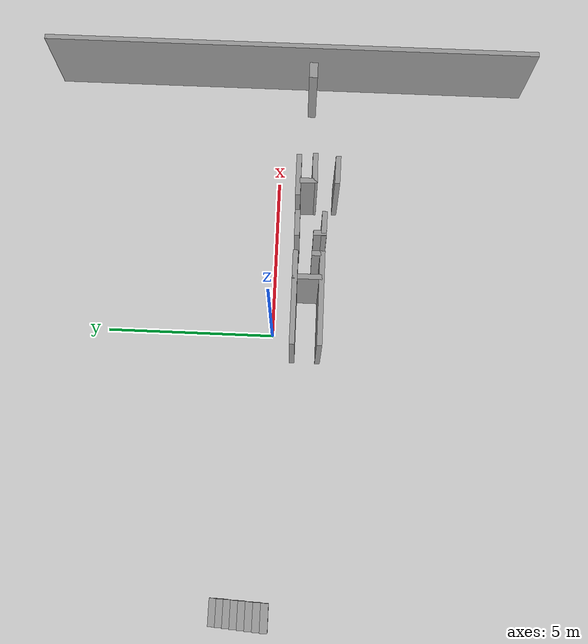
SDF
<sdf version="1.7">
 <world name="default">
  <model name="ground_plane">
   <static>1</static>
   <link name="link">
    <collision name="collision">
     <geometry><plane><normal>0 0 1</normal><size>100 100</size></plane></geometry>
     <surface><friction><ode><mu>100</mu><mu2>50</mu2></ode></friction></surface>
    </collision>
    <visual name="visual">
     <cast_shadows>0</cast_shadows>
     <geometry><plane><normal>0 0 1</normal><size>100 100</size></plane></geometry>
     <material>
      <script><uri>file://media/materials/scripts/gazebo.material</uri><name>Gazebo/Grey</name></script>
     </material>
    </visual>
   </link>
  </model>
  <model name="Level1">
   <link name="Stairs_3">
    <visual name="Stairs_3_Visual_0">
     <pose>-8.05835 1.30916 0.09375 0 -0 0</pose>
     <geometry><box><size>0.765 0.21375 0.1875</size></box></geometry>
     <material>
      <script><uri>file://media/materials/scripts/gazebo.material</uri><name>Gazebo/Grey</name></script>
      <ambient>1 1 1 1</ambient>
      <shader type="pixel"/>
     </material>
     <meta><layer>0</layer></meta>
    </visual>
    <visual name="Stairs_3_Visual_1">
     <pose>-8.05835 1.09541 0.28125 0 -0 0</pose>
     <geometry><box><size>0.765 0.21375 0.1875</size></box></geometry>
     <material>
      <script><uri>file://media/materials/scripts/gazebo.material</uri><name>Gazebo/Grey</name></script>
      <ambient>1 1 1 1</ambient>
      <shader type="pixel"/>
     </material>
     <meta><layer>0</layer></meta>
    </visual>
    <visual name="Stairs_3_Visual_2">
     <pose>-8.05835 0.881662 0.46875 0 -0 0</pose>
     <geometry><box><size>0.765 0.21375 0.1875</size></box></geometry>
     <material>
      <script><uri>file://media/materials/scripts/gazebo.material</uri><name>Gazebo/Grey</name></script>
      <ambient>1 1 1 1</ambient>
      <shader type="pixel"/>
     </material>
     <meta><layer>0</layer></meta>
    </visual>
    <visual name="Stairs_3_Visual_3">
     <pose>-8.05835 0.667912 0.65625 0 -0 0</pose>
     <geometry><box><size>0.765 0.21375 0.1875</size></box></geometry>
     <material>
      <script><uri>file://media/materials/scripts/gazebo.material</uri><name>Gazebo/Grey</name></script>
      <ambient>1 1 1 1</ambient>
      <shader type="pixel"/>
     </material>
     <meta><layer>0</layer></meta>
    </visual>
    <visual name="Stairs_3_Visual_4">
     <pose>-8.05835 0.454162 0.84375 0 -0 0</pose>
     <geometry><box><size>0.765 0.21375 0.1875</size></box></geometry>
     <material>
      <script><uri>file://media/materials/scripts/gazebo.material</uri><name>Gazebo/Grey</name></script>
      <ambient>1 1 1 1</ambient>
      <shader type="pixel"/>
     </material>
     <meta><layer>0</layer></meta>
    </visual>
    <visual name="Stairs_3_Visual_5">
     <pose>-8.05835 0.240412 1.03125 0 -0 0</pose>
     <geometry><box><size>0.765 0.21375 0.1875</size></box></geometry>
     <material>
      <script><uri>file://media/materials/scripts/gazebo.material</uri><name>Gazebo/Grey</name></script>
      <ambient>1 1 1 1</ambient>
      <shader type="pixel"/>
     </material>
     <meta><layer>0</layer></meta>
    </visual>
    <visual name="Stairs_3_Visual_6">
     <pose>-8.05835 0.026662 1.21875 0 -0 0</pose>
     <geometry><box><size>0.765 0.21375 0.1875</size></box></geometry>
     <material>
      <script><uri>file://media/materials/scripts/gazebo.material</uri><name>Gazebo/Grey</name></script>
      <ambient>1 1 1 1</ambient>
      <shader type="pixel"/>
     </material>
     <meta><layer>0</layer></meta>
    </visual>
    <visual name="Stairs_3_Visual_7">
     <pose>-8.05835 -0.187088 1.40625 0 -0 0</pose>
     <geometry><box><size>0.765 0.21375 0.1875</size></box></geometry>
     <material>
      <script><uri>file://media/materials/scripts/gazebo.material</uri><name>Gazebo/Grey</name></script>
      <ambient>1 1 1 1</ambient>
      <shader type="pixel"/>
     </material>
     <meta><layer>0</layer></meta>
    </visual>
    <collision name="Stairs_3_Collision_0">
     <pose>-8.05835 1.30916 0.09375 0 -0 0</pose>
     <geometry><box><size>0.765 0.21375 0.1875</size></box></geometry>
     <surface>
      <friction>
       <ode><mu>1</mu><mu2>1</mu2><fdir1>0 0 0</fdir1><slip1>0</slip1><slip2>0</slip2></ode>
       <torsional>
        <coefficient>1</coefficient>
        <patch_radius>0</patch_radius>
        <surface_radius>0</surface_radius>
        <use_patch_radius>1</use_patch_radius>
        <ode><slip>0</slip></ode>
       </torsional>
      </friction>
      <bounce><restitution_coefficient>0</restitution_coefficient><threshold>1e+06</threshold></bounce>
      <contact>
       <collide_without_contact>0</collide_without_contact>
       <collide_without_contact_bitmask>1</collide_without_contact_bitmask>
       <collide_bitmask>1</collide_bitmask>
       <ode>
        <soft_cfm>0</soft_cfm>
        <soft_erp>0.2</soft_erp>
        <kp>1e+13</kp>
        <kd>1</kd>
        <max_vel>0.01</max_vel>
        <min_depth>0</min_depth>
       </ode>
       <bullet>
        <split_impulse>1</split_impulse>
        <split_impulse_penetration_threshold>-0.01</split_impulse_penetration_threshold>
        <soft_cfm>0</soft_cfm>
        <soft_erp>0.2</soft_erp>
        <kp>1e+13</kp>
        <kd>1</kd>
       </bullet>
      </contact>
     </surface>
    </collision>
    <collision name="Stairs_3_Collision_1">
     <pose>-8.05835 1.09541 0.28125 0 -0 0</pose>
     <geometry><box><size>0.765 0.21375 0.1875</size></box></geometry>
     <surface>
      <friction>
       <ode><mu>1</mu><mu2>1</mu2><fdir1>0 0 0</fdir1><slip1>0</slip1><slip2>0</slip2></ode>
       <torsional>
        <coefficient>1</coefficient>
        <patch_radius>0</patch_radius>
        <surface_radius>0</surface_radius>
        <use_patch_radius>1</use_patch_radius>
        <ode><slip>0</slip></ode>
       </torsional>
      </friction>
      <bounce><restitution_coefficient>0</restitution_coefficient><threshold>1e+06</threshold></bounce>
      <contact>
       <collide_without_contact>0</collide_without_contact>
       <collide_without_contact_bitmask>1</collide_without_contact_bitmask>
       <collide_bitmask>1</collide_bitmask>
       <ode>
        <soft_cfm>0</soft_cfm>
        <soft_erp>0.2</soft_erp>
        <kp>1e+13</kp>
        <kd>1</kd>
        <max_vel>0.01</max_vel>
        <min_depth>0</min_depth>
       </ode>
       <bullet>
        <split_impulse>1</split_impulse>
        <split_impulse_penetration_threshold>-0.01</split_impulse_penetration_threshold>
        <soft_cfm>0</soft_cfm>
        <soft_erp>0.2</soft_erp>
        <kp>1e+13</kp>
        <kd>1</kd>
       </bullet>
      </contact>
     </surface>
    </collision>
    <collision name="Stairs_3_Collision_2">
     <pose>-8.05835 0.881662 0.46875 0 -0 0</pose>
     <geometry><box><size>0.765 0.21375 0.1875</size></box></geometry>
     <surface>
      <friction>
       <ode><mu>1</mu><mu2>1</mu2><fdir1>0 0 0</fdir1><slip1>0</slip1><slip2>0</slip2></ode>
       <torsional>
        <coefficient>1</coefficient>
        <patch_radius>0</patch_radius>
        <surface_radius>0</surface_radius>
        <use_patch_radius>1</use_patch_radius>
        <ode><slip>0</slip></ode>
       </torsional>
      </friction>
      <bounce><restitution_coefficient>0</restitution_coefficient><threshold>1e+06</threshold></bounce>
      <contact>
       <collide_without_contact>0</collide_without_contact>
       <collide_without_contact_bitmask>1</collide_without_contact_bitmask>
       <collide_bitmask>1</collide_bitmask>
       <ode>
        <soft_cfm>0</soft_cfm>
        <soft_erp>0.2</soft_erp>
        <kp>1e+13</kp>
        <kd>1</kd>
        <max_vel>0.01</max_vel>
        <min_depth>0</min_depth>
       </ode>
       <bullet>
        <split_impulse>1</split_impulse>
        <split_impulse_penetration_threshold>-0.01</split_impulse_penetration_threshold>
        <soft_cfm>0</soft_cfm>
        <soft_erp>0.2</soft_erp>
        <kp>1e+13</kp>
        <kd>1</kd>
       </bullet>
      </contact>
     </surface>
    </collision>
    <collision name="Stairs_3_Collision_3">
     <pose>-8.05835 0.667912 0.65625 0 -0 0</pose>
     <geometry><box><size>0.765 0.21375 0.1875</size></box></geometry>
     <surface>
      <friction>
       <ode><mu>1</mu><mu2>1</mu2><fdir1>0 0 0</fdir1><slip1>0</slip1><slip2>0</slip2></ode>
       <torsional>
        <coefficient>1</coefficient>
        <patch_radius>0</patch_radius>
        <surface_radius>0</surface_radius>
        <use_patch_radius>1</use_patch_radius>
        <ode><slip>0</slip></ode>
       </torsional>
      </friction>
      <bounce><restitution_coefficient>0</restitution_coefficient><threshold>1e+06</threshold></bounce>
      <contact>
       <collide_without_contact>0</collide_without_contact>
       <collide_without_contact_bitmask>1</collide_without_contact_bitmask>
       <collide_bitmask>1</collide_bitmask>
       <ode>
        <soft_cfm>0</soft_cfm>
        <soft_erp>0.2</soft_erp>
        <kp>1e+13</kp>
        <kd>1</kd>
        <max_vel>0.01</max_vel>
        <min_depth>0</min_depth>
       </ode>
       <bullet>
        <split_impulse>1</split_impulse>
        <split_impulse_penetration_threshold>-0.01</split_impulse_penetration_threshold>
        <soft_cfm>0</soft_cfm>
        <soft_erp>0.2</soft_erp>
        <kp>1e+13</kp>
        <kd>1</kd>
       </bullet>
      </contact>
     </surface>
    </collision>
    <collision name="Stairs_3_Collision_4">
     <pose>-8.05835 0.454162 0.84375 0 -0 0</pose>
     <geometry><box><size>0.765 0.21375 0.1875</size></box></geometry>
     <surface>
      <friction>
       <ode><mu>1</mu><mu2>1</mu2><fdir1>0 0 0</fdir1><slip1>0</slip1><slip2>0</slip2></ode>
       <torsional>
        <coefficient>1</coefficient>
        <patch_radius>0</patch_radius>
        <surface_radius>0</surface_radius>
        <use_patch_radius>1</use_patch_radius>
        <ode><slip>0</slip></ode>
       </torsional>
      </friction>
      <bounce><restitution_coefficient>0</restitution_coefficient><threshold>1e+06</threshold></bounce>
      <contact>
       <collide_without_contact>0</collide_without_contact>
       <collide_without_contact_bitmask>1</collide_without_contact_bitmask>
       <collide_bitmask>1</collide_bitmask>
       <ode>
        <soft_cfm>0</soft_cfm>
        <soft_erp>0.2</soft_erp>
        <kp>1e+13</kp>
        <kd>1</kd>
        <max_vel>0.01</max_vel>
        <min_depth>0</min_depth>
       </ode>
       <bullet>
        <split_impulse>1</split_impulse>
        <split_impulse_penetration_threshold>-0.01</split_impulse_penetration_threshold>
        <soft_cfm>0</soft_cfm>
        <soft_erp>0.2</soft_erp>
        <kp>1e+13</kp>
        <kd>1</kd>
       </bullet>
      </contact>
     </surface>
    </collision>
    <collision name="Stairs_3_Collision_5">
     <pose>-8.05835 0.240412 1.03125 0 -0 0</pose>
     <geometry><box><size>0.765 0.21375 0.1875</size></box></geometry>
     <surface>
      <friction>
       <ode><mu>1</mu><mu2>1</mu2><fdir1>0 0 0</fdir1><slip1>0</slip1><slip2>0</slip2></ode>
       <torsional>
        <coefficient>1</coefficient>
        <patch_radius>0</patch_radius>
        <surface_radius>0</surface_radius>
        <use_patch_radius>1</use_patch_radius>
        <ode><slip>0</slip></ode>
       </torsional>
      </friction>
      <bounce><restitution_coefficient>0</restitution_coefficient><threshold>1e+06</threshold></bounce>
      <contact>
       <collide_without_contact>0</collide_without_contact>
       <collide_without_contact_bitmask>1</collide_without_contact_bitmask>
       <collide_bitmask>1</collide_bitmask>
       <ode>
        <soft_cfm>0</soft_cfm>
        <soft_erp>0.2</soft_erp>
        <kp>1e+13</kp>
        <kd>1</kd>
        <max_vel>0.01</max_vel>
        <min_depth>0</min_depth>
       </ode>
       <bullet>
        <split_impulse>1</split_impulse>
        <split_impulse_penetration_threshold>-0.01</split_impulse_penetration_threshold>
        <soft_cfm>0</soft_cfm>
        <soft_erp>0.2</soft_erp>
        <kp>1e+13</kp>
        <kd>1</kd>
       </bullet>
      </contact>
     </surface>
    </collision>
    <collision name="Stairs_3_Collision_6">
     <pose>-8.05835 0.026662 1.21875 0 -0 0</pose>
     <geometry><box><size>0.765 0.21375 0.1875</size></box></geometry>
     <surface>
      <friction>
       <ode><mu>1</mu><mu2>1</mu2><fdir1>0 0 0</fdir1><slip1>0</slip1><slip2>0</slip2></ode>
       <torsional>
        <coefficient>1</coefficient>
        <patch_radius>0</patch_radius>
        <surface_radius>0</surface_radius>
        <use_patch_radius>1</use_patch_radius>
        <ode><slip>0</slip></ode>
       </torsional>
      </friction>
      <bounce><restitution_coefficient>0</restitution_coefficient><threshold>1e+06</threshold></bounce>
      <contact>
       <collide_without_contact>0</collide_without_contact>
       <collide_without_contact_bitmask>1</collide_without_contact_bitmask>
       <collide_bitmask>1</collide_bitmask>
       <ode>
        <soft_cfm>0</soft_cfm>
        <soft_erp>0.2</soft_erp>
        <kp>1e+13</kp>
        <kd>1</kd>
        <max_vel>0.01</max_vel>
        <min_depth>0</min_depth>
       </ode>
       <bullet>
        <split_impulse>1</split_impulse>
        <split_impulse_penetration_threshold>-0.01</split_impulse_penetration_threshold>
        <soft_cfm>0</soft_cfm>
        <soft_erp>0.2</soft_erp>
        <kp>1e+13</kp>
        <kd>1</kd>
       </bullet>
      </contact>
     </surface>
    </collision>
    <collision name="Stairs_3_Collision_7">
     <pose>-8.05835 -0.187088 1.40625 0 -0 0</pose>
     <geometry><box><size>0.765 0.21375 0.1875</size></box></geometry>
     <surface>
      <friction>
       <ode><mu>1</mu><mu2>1</mu2><fdir1>0 0 0</fdir1><slip1>0</slip1><slip2>0</slip2></ode>
       <torsional>
        <coefficient>1</coefficient>
        <patch_radius>0</patch_radius>
        <surface_radius>0</surface_radius>
        <use_patch_radius>1</use_patch_radius>
        <ode><slip>0</slip></ode>
       </torsional>
      </friction>
      <bounce><restitution_coefficient>0</restitution_coefficient><threshold>1e+06</threshold></bounce>
      <contact>
       <collide_without_contact>0</collide_without_contact>
       <collide_without_contact_bitmask>1</collide_without_contact_bitmask>
       <collide_bitmask>1</collide_bitmask>
       <ode>
        <soft_cfm>0</soft_cfm>
        <soft_erp>0.2</soft_erp>
        <kp>1e+13</kp>
        <kd>1</kd>
        <max_vel>0.01</max_vel>
        <min_depth>0</min_depth>
       </ode>
       <bullet>
        <split_impulse>1</split_impulse>
        <split_impulse_penetration_threshold>-0.01</split_impulse_penetration_threshold>
        <soft_cfm>0</soft_cfm>
        <soft_erp>0.2</soft_erp>
        <kp>1e+13</kp>
        <kd>1</kd>
       </bullet>
      </contact>
     </surface>
    </collision>
   </link>
   <link name="Wall_100">
    <pose>1.87692 -1.27369 0 0 -0 1.55725</pose>
    <visual name="Wall_100_Visual">
     <pose>0 0 1.25 0 -0 0</pose>
     <geometry><box><size>0.380938 0.15 2.5</size></box></geometry>
     <material>
      <script><uri>file://media/materials/scripts/gazebo.material</uri><name>Gazebo/Grey</name></script>
      <ambient>1 1 1 1</ambient>
      <shader type="pixel"/>
     </material>
     <meta><layer>0</layer></meta>
    </visual>
    <collision name="Wall_100_Collision">
     <pose>0 0 1.25 0 -0 0</pose>
     <geometry><box><size>0.380938 0.15 2.5</size></box></geometry>
     <surface>
      <friction>
       <ode><mu>1</mu><mu2>1</mu2><fdir1>0 0 0</fdir1><slip1>0</slip1><slip2>0</slip2></ode>
       <torsional>
        <coefficient>1</coefficient>
        <patch_radius>0</patch_radius>
        <surface_radius>0</surface_radius>
        <use_patch_radius>1</use_patch_radius>
        <ode><slip>0</slip></ode>
       </torsional>
      </friction>
      <bounce><restitution_coefficient>0</restitution_coefficient><threshold>1e+06</threshold></bounce>
      <contact>
       <collide_without_contact>0</collide_without_contact>
       <collide_without_contact_bitmask>1</collide_without_contact_bitmask>
       <collide_bitmask>1</collide_bitmask>
       <ode>
        <soft_cfm>0</soft_cfm>
        <soft_erp>0.2</soft_erp>
        <kp>1e+13</kp>
        <kd>1</kd>
        <max_vel>0.01</max_vel>
        <min_depth>0</min_depth>
       </ode>
       <bullet>
        <split_impulse>1</split_impulse>
        <split_impulse_penetration_threshold>-0.01</split_impulse_penetration_threshold>
        <soft_cfm>0</soft_cfm>
        <soft_erp>0.2</soft_erp>
        <kp>1e+13</kp>
        <kd>1</kd>
       </bullet>
      </contact>
     </surface>
    </collision>
   </link>
   <link name="Wall_118">
    <pose>2.78063 -1.41333 0 0 0 -0.016565</pose>
    <visual name="Wall_118_Visual">
     <pose>0 0 1.25 0 -0 0</pose>
     <geometry><box><size>0.743336 0.15 2.5</size></box></geometry>
     <material>
      <script><uri>file://media/materials/scripts/gazebo.material</uri><name>Gazebo/Grey</name></script>
      <ambient>1 1 1 1</ambient>
      <shader type="pixel"/>
     </material>
     <meta><layer>0</layer></meta>
    </visual>
    <collision name="Wall_118_Collision">
     <pose>0 0 1.25 0 -0 0</pose>
     <geometry><box><size>0.743336 0.15 2.5</size></box></geometry>
     <surface>
      <friction>
       <ode><mu>1</mu><mu2>1</mu2><fdir1>0 0 0</fdir1><slip1>0</slip1><slip2>0</slip2></ode>
       <torsional>
        <coefficient>1</coefficient>
        <patch_radius>0</patch_radius>
        <surface_radius>0</surface_radius>
        <use_patch_radius>1</use_patch_radius>
        <ode><slip>0</slip></ode>
       </torsional>
      </friction>
      <bounce><restitution_coefficient>0</restitution_coefficient><threshold>1e+06</threshold></bounce>
      <contact>
       <collide_without_contact>0</collide_without_contact>
       <collide_without_contact_bitmask>1</collide_without_contact_bitmask>
       <collide_bitmask>1</collide_bitmask>
       <ode>
        <soft_cfm>0</soft_cfm>
        <soft_erp>0.2</soft_erp>
        <kp>1e+13</kp>
        <kd>1</kd>
        <max_vel>0.01</max_vel>
        <min_depth>0</min_depth>
       </ode>
       <bullet>
        <split_impulse>1</split_impulse>
        <split_impulse_penetration_threshold>-0.01</split_impulse_penetration_threshold>
        <soft_cfm>0</soft_cfm>
        <soft_erp>0.2</soft_erp>
        <kp>1e+13</kp>
        <kd>1</kd>
       </bullet>
      </contact>
     </surface>
    </collision>
   </link>
   <link name="Wall_120">
    <pose>2.7801 -0.636031 0 0 -0 0.007026</pose>
    <visual name="Wall_120_Visual">
     <pose>0 0 1.25 0 -0 0</pose>
     <geometry><box><size>0.784003 0.15 2.5</size></box></geometry>
     <material>
      <script><uri>file://media/materials/scripts/gazebo.material</uri><name>Gazebo/Grey</name></script>
      <ambient>1 1 1 1</ambient>
      <shader type="pixel"/>
     </material>
     <meta><layer>0</layer></meta>
    </visual>
    <collision name="Wall_120_Collision">
     <pose>0 0 1.25 0 -0 0</pose>
     <geometry><box><size>0.784003 0.15 2.5</size></box></geometry>
     <surface>
      <friction>
       <ode><mu>1</mu><mu2>1</mu2><fdir1>0 0 0</fdir1><slip1>0</slip1><slip2>0</slip2></ode>
       <torsional>
        <coefficient>1</coefficient>
        <patch_radius>0</patch_radius>
        <surface_radius>0</surface_radius>
        <use_patch_radius>1</use_patch_radius>
        <ode><slip>0</slip></ode>
       </torsional>
      </friction>
      <bounce><restitution_coefficient>0</restitution_coefficient><threshold>1e+06</threshold></bounce>
      <contact>
       <collide_without_contact>0</collide_without_contact>
       <collide_without_contact_bitmask>1</collide_without_contact_bitmask>
       <collide_bitmask>1</collide_bitmask>
       <ode>
        <soft_cfm>0</soft_cfm>
        <soft_erp>0.2</soft_erp>
        <kp>1e+13</kp>
        <kd>1</kd>
        <max_vel>0.01</max_vel>
        <min_depth>0</min_depth>
       </ode>
       <bullet>
        <split_impulse>1</split_impulse>
        <split_impulse_penetration_threshold>-0.01</split_impulse_penetration_threshold>
        <soft_cfm>0</soft_cfm>
        <soft_erp>0.2</soft_erp>
        <kp>1e+13</kp>
        <kd>1</kd>
       </bullet>
      </contact>
     </surface>
    </collision>
   </link>
   <link name="Wall_125">
    <pose>2.49241 -1.2982 0 0 0 -1.5603</pose>
    <visual name="Wall_125_Visual">
     <pose>0 0 1.25 0 -0 0</pose>
     <geometry><box><size>0.379383 0.15 2.5</size></box></geometry>
     <material>
      <script><uri>file://media/materials/scripts/gazebo.material</uri><name>Gazebo/Grey</name></script>
      <ambient>1 1 1 1</ambient>
      <shader type="pixel"/>
     </material>
     <meta><layer>0</layer></meta>
    </visual>
    <collision name="Wall_125_Collision">
     <pose>0 0 1.25 0 -0 0</pose>
     <geometry><box><size>0.379383 0.15 2.5</size></box></geometry>
     <surface>
      <friction>
       <ode><mu>1</mu><mu2>1</mu2><fdir1>0 0 0</fdir1><slip1>0</slip1><slip2>0</slip2></ode>
       <torsional>
        <coefficient>1</coefficient>
        <patch_radius>0</patch_radius>
        <surface_radius>0</surface_radius>
        <use_patch_radius>1</use_patch_radius>
        <ode><slip>0</slip></ode>
       </torsional>
      </friction>
      <bounce><restitution_coefficient>0</restitution_coefficient><threshold>1e+06</threshold></bounce>
      <contact>
       <collide_without_contact>0</collide_without_contact>
       <collide_without_contact_bitmask>1</collide_without_contact_bitmask>
       <collide_bitmask>1</collide_bitmask>
       <ode>
        <soft_cfm>0</soft_cfm>
        <soft_erp>0.2</soft_erp>
        <kp>1e+13</kp>
        <kd>1</kd>
        <max_vel>0.01</max_vel>
        <min_depth>0</min_depth>
       </ode>
       <bullet>
        <split_impulse>1</split_impulse>
        <split_impulse_penetration_threshold>-0.01</split_impulse_penetration_threshold>
        <soft_cfm>0</soft_cfm>
        <soft_erp>0.2</soft_erp>
        <kp>1e+13</kp>
        <kd>1</kd>
       </bullet>
      </contact>
     </surface>
    </collision>
   </link>
   <link name="Wall_127">
    <pose>4.2698 -0.614016 0 0 -0 0.001406</pose>
    <visual name="Wall_127_Visual">
     <pose>0 0 1.25 0 -0 0</pose>
     <geometry><box><size>1.27277 0.15 2.5</size></box></geometry>
     <material>
      <script><uri>file://media/materials/scripts/gazebo.material</uri><name>Gazebo/Grey</name></script>
      <ambient>1 1 1 1</ambient>
      <shader type="pixel"/>
     </material>
     <meta><layer>0</layer></meta>
    </visual>
    <collision name="Wall_127_Collision">
     <pose>0 0 1.25 0 -0 0</pose>
     <geometry><box><size>1.27277 0.15 2.5</size></box></geometry>
     <surface>
      <friction>
       <ode><mu>1</mu><mu2>1</mu2><fdir1>0 0 0</fdir1><slip1>0</slip1><slip2>0</slip2></ode>
       <torsional>
        <coefficient>1</coefficient>
        <patch_radius>0</patch_radius>
        <surface_radius>0</surface_radius>
        <use_patch_radius>1</use_patch_radius>
        <ode><slip>0</slip></ode>
       </torsional>
      </friction>
      <bounce><restitution_coefficient>0</restitution_coefficient><threshold>1e+06</threshold></bounce>
      <contact>
       <collide_without_contact>0</collide_without_contact>
       <collide_without_contact_bitmask>1</collide_without_contact_bitmask>
       <collide_bitmask>1</collide_bitmask>
       <ode>
        <soft_cfm>0</soft_cfm>
        <soft_erp>0.2</soft_erp>
        <kp>1e+13</kp>
        <kd>1</kd>
        <max_vel>0.01</max_vel>
        <min_depth>0</min_depth>
       </ode>
       <bullet>
        <split_impulse>1</split_impulse>
        <split_impulse_penetration_threshold>-0.01</split_impulse_penetration_threshold>
        <soft_cfm>0</soft_cfm>
        <soft_erp>0.2</soft_erp>
        <kp>1e+13</kp>
        <kd>1</kd>
       </bullet>
      </contact>
     </surface>
    </collision>
   </link>
   <link name="Wall_129">
    <pose>4.09078 -0.915784 0 0 0 -1.53956</pose>
    <visual name="Wall_129_Visual">
     <pose>0 0 1.25 0 -0 0</pose>
     <geometry><box><size>0.511978 0.15 2.5</size></box></geometry>
     <material>
      <script><uri>file://media/materials/scripts/gazebo.material</uri><name>Gazebo/Grey</name></script>
      <ambient>1 1 1 1</ambient>
      <shader type="pixel"/>
     </material>
     <meta><layer>0</layer></meta>
    </visual>
    <collision name="Wall_129_Collision">
     <pose>0 0 1.25 0 -0 0</pose>
     <geometry><box><size>0.511978 0.15 2.5</size></box></geometry>
     <surface>
      <friction>
       <ode><mu>1</mu><mu2>1</mu2><fdir1>0 0 0</fdir1><slip1>0</slip1><slip2>0</slip2></ode>
       <torsional>
        <coefficient>1</coefficient>
        <patch_radius>0</patch_radius>
        <surface_radius>0</surface_radius>
        <use_patch_radius>1</use_patch_radius>
        <ode><slip>0</slip></ode>
       </torsional>
      </friction>
      <bounce><restitution_coefficient>0</restitution_coefficient><threshold>1e+06</threshold></bounce>
      <contact>
       <collide_without_contact>0</collide_without_contact>
       <collide_without_contact_bitmask>1</collide_without_contact_bitmask>
       <collide_bitmask>1</collide_bitmask>
       <ode>
        <soft_cfm>0</soft_cfm>
        <soft_erp>0.2</soft_erp>
        <kp>1e+13</kp>
        <kd>1</kd>
        <max_vel>0.01</max_vel>
        <min_depth>0</min_depth>
       </ode>
       <bullet>
        <split_impulse>1</split_impulse>
        <split_impulse_penetration_threshold>-0.01</split_impulse_penetration_threshold>
        <soft_cfm>0</soft_cfm>
        <soft_erp>0.2</soft_erp>
        <kp>1e+13</kp>
        <kd>1</kd>
       </bullet>
      </contact>
     </surface>
    </collision>
   </link>
   <link name="Wall_130">
    <pose>4.49048 -1.092 0 0 -0 0.011889</pose>
    <visual name="Wall_130_Visual">
     <pose>0 0 1.25 0 -0 0</pose>
     <geometry><box><size>0.938163 0.15 2.5</size></box></geometry>
     <material>
      <script><uri>file://media/materials/scripts/gazebo.material</uri><name>Gazebo/Grey</name></script>
      <ambient>1 1 1 1</ambient>
      <shader type="pixel"/>
     </material>
     <meta><layer>0</layer></meta>
    </visual>
    <collision name="Wall_130_Collision">
     <pose>0 0 1.25 0 -0 0</pose>
     <geometry><box><size>0.938163 0.15 2.5</size></box></geometry>
     <surface>
      <friction>
       <ode><mu>1</mu><mu2>1</mu2><fdir1>0 0 0</fdir1><slip1>0</slip1><slip2>0</slip2></ode>
       <torsional>
        <coefficient>1</coefficient>
        <patch_radius>0</patch_radius>
        <surface_radius>0</surface_radius>
        <use_patch_radius>1</use_patch_radius>
        <ode><slip>0</slip></ode>
       </torsional>
      </friction>
      <bounce><restitution_coefficient>0</restitution_coefficient><threshold>1e+06</threshold></bounce>
      <contact>
       <collide_without_contact>0</collide_without_contact>
       <collide_without_contact_bitmask>1</collide_without_contact_bitmask>
       <collide_bitmask>1</collide_bitmask>
       <ode>
        <soft_cfm>0</soft_cfm>
        <soft_erp>0.2</soft_erp>
        <kp>1e+13</kp>
        <kd>1</kd>
        <max_vel>0.01</max_vel>
        <min_depth>0</min_depth>
       </ode>
       <bullet>
        <split_impulse>1</split_impulse>
        <split_impulse_penetration_threshold>-0.01</split_impulse_penetration_threshold>
        <soft_cfm>0</soft_cfm>
        <soft_erp>0.2</soft_erp>
        <kp>1e+13</kp>
        <kd>1</kd>
       </bullet>
      </contact>
     </surface>
    </collision>
   </link>
   <link name="Wall_139">
    <pose>4.46116 -1.75541 0 0 0 -0.014068</pose>
    <visual name="Wall_139_Visual">
     <pose>0 0 1.25 0 -0 0</pose>
     <geometry><box><size>0.854069 0.15 2.5</size></box></geometry>
     <material>
      <script><uri>file://media/materials/scripts/gazebo.material</uri><name>Gazebo/Grey</name></script>
      <ambient>1 1 1 1</ambient>
      <shader type="pixel"/>
     </material>
     <meta><layer>0</layer></meta>
    </visual>
    <collision name="Wall_139_Collision">
     <pose>0 0 1.25 0 -0 0</pose>
     <geometry><box><size>0.854069 0.15 2.5</size></box></geometry>
     <surface>
      <friction>
       <ode><mu>1</mu><mu2>1</mu2><fdir1>0 0 0</fdir1><slip1>0</slip1><slip2>0</slip2></ode>
       <torsional>
        <coefficient>1</coefficient>
        <patch_radius>0</patch_radius>
        <surface_radius>0</surface_radius>
        <use_patch_radius>1</use_patch_radius>
        <ode><slip>0</slip></ode>
       </torsional>
      </friction>
      <bounce><restitution_coefficient>0</restitution_coefficient><threshold>1e+06</threshold></bounce>
      <contact>
       <collide_without_contact>0</collide_without_contact>
       <collide_without_contact_bitmask>1</collide_without_contact_bitmask>
       <collide_bitmask>1</collide_bitmask>
       <ode>
        <soft_cfm>0</soft_cfm>
        <soft_erp>0.2</soft_erp>
        <kp>1e+13</kp>
        <kd>1</kd>
        <max_vel>0.01</max_vel>
        <min_depth>0</min_depth>
       </ode>
       <bullet>
        <split_impulse>1</split_impulse>
        <split_impulse_penetration_threshold>-0.01</split_impulse_penetration_threshold>
        <soft_cfm>0</soft_cfm>
        <soft_erp>0.2</soft_erp>
        <kp>1e+13</kp>
        <kd>1</kd>
       </bullet>
      </contact>
     </surface>
    </collision>
   </link>
   <link name="Wall_147_clone_clone_23_clone_0">
    <pose>7.6752 -0.934677 0 0 -0 4e-06</pose>
    <inertial>
     <mass>1</mass>
     <inertia><ixx>1</ixx><ixy>0</ixy><ixz>0</ixz><iyy>1</iyy><iyz>0</iyz><izz>1</izz></inertia>
    </inertial>
    <visual name="Wall_147_Visual">
     <pose>0 0 1.25 0 -0 0</pose>
     <geometry><box><size>0.5 0.25 2.5</size></box></geometry>
     <material>
      <script><uri>file://media/materials/scripts/gazebo.material</uri><name>Gazebo/Grey</name></script>
      <ambient>1 1 1 1</ambient>
      <shader type="pixel"><normal_map>__default__</normal_map></shader>
     </material>
     <meta><layer>0</layer></meta>
    </visual>
    <collision name="Wall_147_Collision">
     <pose>0 0 1.25 0 -0 0</pose>
     <geometry><box><size>0.5 0.25 2.5</size></box></geometry>
     <surface>
      <friction>
       <ode><mu>1</mu><mu2>1</mu2><fdir1>0 0 0</fdir1><slip1>0</slip1><slip2>0</slip2></ode>
       <torsional>
        <coefficient>1</coefficient>
        <patch_radius>0</patch_radius>
        <surface_radius>0</surface_radius>
        <use_patch_radius>1</use_patch_radius>
        <ode><slip>0</slip></ode>
       </torsional>
      </friction>
      <bounce><restitution_coefficient>0</restitution_coefficient><threshold>1e+06</threshold></bounce>
      <contact>
       <collide_without_contact>0</collide_without_contact>
       <collide_without_contact_bitmask>1</collide_without_contact_bitmask>
       <collide_bitmask>1</collide_bitmask>
       <ode>
        <soft_cfm>0</soft_cfm>
        <soft_erp>0.2</soft_erp>
        <kp>1e+13</kp>
        <kd>1</kd>
        <max_vel>0.01</max_vel>
        <min_depth>0</min_depth>
       </ode>
       <bullet>
        <split_impulse>1</split_impulse>
        <split_impulse_penetration_threshold>-0.01</split_impulse_penetration_threshold>
        <soft_cfm>0</soft_cfm>
        <soft_erp>0.2</soft_erp>
        <kp>1e+13</kp>
        <kd>1</kd>
       </bullet>
      </contact>
     </surface>
    </collision>
   </link>
   <link name="Wall_150">
    <pose>1.17294 -1.01005 0 0 0 -1.57275</pose>
    <visual name="Wall_150_Visual">
     <pose>0 0 1.25 0 -0 0</pose>
     <geometry><box><size>0.891007 0.15 2.5</size></box></geometry>
     <material>
      <script><uri>file://media/materials/scripts/gazebo.material</uri><name>Gazebo/Grey</name></script>
      <ambient>1 1 1 1</ambient>
      <shader type="pixel"/>
     </material>
     <meta><layer>0</layer></meta>
    </visual>
    <collision name="Wall_150_Collision">
     <pose>0 0 1.25 0 -0 0</pose>
     <geometry><box><size>0.891007 0.15 2.5</size></box></geometry>
     <surface>
      <friction>
       <ode><mu>1</mu><mu2>1</mu2><fdir1>0 0 0</fdir1><slip1>0</slip1><slip2>0</slip2></ode>
       <torsional>
        <coefficient>1</coefficient>
        <patch_radius>0</patch_radius>
        <surface_radius>0</surface_radius>
        <use_patch_radius>1</use_patch_radius>
        <ode><slip>0</slip></ode>
       </torsional>
      </friction>
      <bounce><restitution_coefficient>0</restitution_coefficient><threshold>1e+06</threshold></bounce>
      <contact>
       <collide_without_contact>0</collide_without_contact>
       <collide_without_contact_bitmask>1</collide_without_contact_bitmask>
       <collide_bitmask>1</collide_bitmask>
       <ode>
        <soft_cfm>0</soft_cfm>
        <soft_erp>0.2</soft_erp>
        <kp>1e+13</kp>
        <kd>1</kd>
        <max_vel>0.01</max_vel>
        <min_depth>0</min_depth>
       </ode>
       <bullet>
        <split_impulse>1</split_impulse>
        <split_impulse_penetration_threshold>-0.01</split_impulse_penetration_threshold>
        <soft_cfm>0</soft_cfm>
        <soft_erp>0.2</soft_erp>
        <kp>1e+13</kp>
        <kd>1</kd>
       </bullet>
      </contact>
     </surface>
    </collision>
   </link>
   <link name="Wall_6">
    <pose>8.48325 -0.228432 0 0 -0 1.5708</pose>
    <visual name="Wall_6_Visual">
     <pose>0 0 1.25 0 -0 0</pose>
     <geometry><box><size>15 0.15 2.5</size></box></geometry>
     <material>
      <script><uri>file://media/materials/scripts/gazebo.material</uri><name>Gazebo/Grey</name></script>
      <ambient>1 1 1 1</ambient>
      <shader type="pixel"/>
     </material>
     <meta><layer>0</layer></meta>
    </visual>
    <collision name="Wall_6_Collision">
     <pose>0 0 1.25 0 -0 0</pose>
     <geometry><box><size>15 0.15 2.5</size></box></geometry>
     <surface>
      <friction>
       <ode><mu>1</mu><mu2>1</mu2><fdir1>0 0 0</fdir1><slip1>0</slip1><slip2>0</slip2></ode>
       <torsional>
        <coefficient>1</coefficient>
        <patch_radius>0</patch_radius>
        <surface_radius>0</surface_radius>
        <use_patch_radius>1</use_patch_radius>
        <ode><slip>0</slip></ode>
       </torsional>
      </friction>
      <bounce><restitution_coefficient>0</restitution_coefficient><threshold>1e+06</threshold></bounce>
      <contact>
       <collide_without_contact>0</collide_without_contact>
       <collide_without_contact_bitmask>1</collide_without_contact_bitmask>
       <collide_bitmask>1</collide_bitmask>
       <ode>
        <soft_cfm>0</soft_cfm>
        <soft_erp>0.2</soft_erp>
        <kp>1e+13</kp>
        <kd>1</kd>
        <max_vel>0.01</max_vel>
        <min_depth>0</min_depth>
       </ode>
       <bullet>
        <split_impulse>1</split_impulse>
        <split_impulse_penetration_threshold>-0.01</split_impulse_penetration_threshold>
        <soft_cfm>0</soft_cfm>
        <soft_erp>0.2</soft_erp>
        <kp>1e+13</kp>
        <kd>1</kd>
       </bullet>
      </contact>
     </surface>
    </collision>
   </link>
   <link name="Wall_97">
    <pose>0.576157 -0.624415 0 0 -0 0</pose>
    <visual name="Wall_97_Visual">
     <pose>0 0 1.25 0 -0 0</pose>
     <geometry><box><size>2.75 0.15 2.5</size></box></geometry>
     <material>
      <script><uri>file://media/materials/scripts/gazebo.material</uri><name>Gazebo/Grey</name></script>
      <ambient>1 1 1 1</ambient>
      <shader type="pixel"/>
     </material>
     <meta><layer>0</layer></meta>
    </visual>
    <collision name="Wall_97_Collision">
     <pose>0 0 1.25 0 -0 0</pose>
     <geometry><box><size>2.75 0.15 2.5</size></box></geometry>
     <surface>
      <friction>
       <ode><mu>1</mu><mu2>1</mu2><fdir1>0 0 0</fdir1><slip1>0</slip1><slip2>0</slip2></ode>
       <torsional>
        <coefficient>1</coefficient>
        <patch_radius>0</patch_radius>
        <surface_radius>0</surface_radius>
        <use_patch_radius>1</use_patch_radius>
        <ode><slip>0</slip></ode>
       </torsional>
      </friction>
      <bounce><restitution_coefficient>0</restitution_coefficient><threshold>1e+06</threshold></bounce>
      <contact>
       <collide_without_contact>0</collide_without_contact>
       <collide_without_contact_bitmask>1</collide_without_contact_bitmask>
       <collide_bitmask>1</collide_bitmask>
       <ode>
        <soft_cfm>0</soft_cfm>
        <soft_erp>0.2</soft_erp>
        <kp>1e+13</kp>
        <kd>1</kd>
        <max_vel>0.01</max_vel>
        <min_depth>0</min_depth>
       </ode>
       <bullet>
        <split_impulse>1</split_impulse>
        <split_impulse_penetration_threshold>-0.01</split_impulse_penetration_threshold>
        <soft_cfm>0</soft_cfm>
        <soft_erp>0.2</soft_erp>
        <kp>1e+13</kp>
        <kd>1</kd>
       </bullet>
      </contact>
     </surface>
    </collision>
   </link>
   <link name="Wall_99">
    <pose>0.573673 -1.38916 0 0 -0 0</pose>
    <visual name="Wall_99_Visual">
     <pose>0 0 1.25 0 -0 0</pose>
     <geometry><box><size>2.75338 0.15 2.5</size></box></geometry>
     <material>
      <script><uri>file://media/materials/scripts/gazebo.material</uri><name>Gazebo/Grey</name></script>
      <ambient>1 1 1 1</ambient>
      <shader type="pixel"/>
     </material>
     <meta><layer>0</layer></meta>
    </visual>
    <collision name="Wall_99_Collision">
     <pose>0 0 1.25 0 -0 0</pose>
     <geometry><box><size>2.75338 0.15 2.5</size></box></geometry>
     <surface>
      <friction>
       <ode><mu>1</mu><mu2>1</mu2><fdir1>0 0 0</fdir1><slip1>0</slip1><slip2>0</slip2></ode>
       <torsional>
        <coefficient>1</coefficient>
        <patch_radius>0</patch_radius>
        <surface_radius>0</surface_radius>
        <use_patch_radius>1</use_patch_radius>
        <ode><slip>0</slip></ode>
       </torsional>
      </friction>
      <bounce><restitution_coefficient>0</restitution_coefficient><threshold>1e+06</threshold></bounce>
      <contact>
       <collide_without_contact>0</collide_without_contact>
       <collide_without_contact_bitmask>1</collide_without_contact_bitmask>
       <collide_bitmask>1</collide_bitmask>
       <ode>
        <soft_cfm>0</soft_cfm>
        <soft_erp>0.2</soft_erp>
        <kp>1e+13</kp>
        <kd>1</kd>
        <max_vel>0.01</max_vel>
        <min_depth>0</min_depth>
       </ode>
       <bullet>
        <split_impulse>1</split_impulse>
        <split_impulse_penetration_threshold>-0.01</split_impulse_penetration_threshold>
        <soft_cfm>0</soft_cfm>
        <soft_erp>0.2</soft_erp>
        <kp>1e+13</kp>
        <kd>1</kd>
       </bullet>
      </contact>
     </surface>
    </collision>
   </link>
   <static>1</static>
   <pose>-0.002726 0.011436 0 0 -0 0</pose>
  </model>
 </world>
</sdf>
